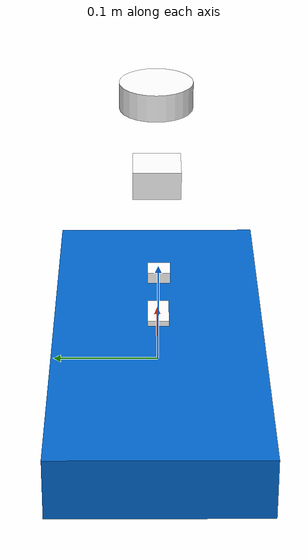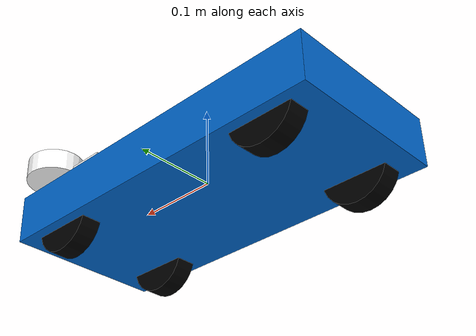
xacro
<?xml version = "1.0"?>
<robot name="shixi_car" xmlns:xacro="http://www.ros.org/wiki/xacro" xmlns:gz="http://playerstage.sourceforge.net/gazebo/xmlschema/#gz">
<!--运行时：
1.xacro car_sim.xacro > car_sim.urdf
2.gz sim car_sim.urdf
-->
    <material name = "blue">
     <color rgba = "0.0 0.4 0.8 1.0"/>
    </material>
    <material name = "black">
     <color rgba = "0.0 0.0 0.0 1.0"/>
    </material>
    <material name = "white">
     <color rgba="1.0 1.0 1.0 1.0"/>
    </material>
    <gazebo>
     <pose>0 -15 0.06 0 0 1.5708</pose>
    </gazebo>

    <link name = "base_link">
     <inertial>
      <origin xyz="0 0 0" rpy = "0 0 0"/>
      <!-- 默认0 0 0 朝东-->
      <mass value = "2"/>
      <inertia ixx="0.00727" ixy = "0" ixz = "0"
               iyy="0.03142" iyz = "0" izz = "0.03748"/>
     </inertial>
     <visual>
      <geometry>
       <box size = " 0.43 0.2 0.06"/>
      </geometry>
      <origin xyz="0 0 0" rpy = "0 0 0"/>
      <material name = "blue"/>
     </visual>
     <collision>
      <geometry>
       <box size = " 0.43 0.2 0.06"/>
      </geometry>
      <origin xyz="0 0 0" rpy = "0 0 0"/>
     </collision>
    </link>

    <xacro:macro name="wheel" params="place side x_offset y_offset z_offset is_front">

     <link name = "${place}_wheel_link">
      <inertial>
       <mass value = "0.15"/>
       <inertia ixx="0.00012" iyy="0.000068" izz="0.000068"
               ixy="0" ixz="0" iyz="0"/>
      </inertial>
      <visual>
       <geometry>
        <cylinder radius ="0.04" length="0.025"/>
       </geometry>
       <material name ="black"/>
       <origin rpy="1.5708 0 0"/>
      </visual>
      <collision>
       <geometry>
        <cylinder radius ="0.04" length="0.025"/>
       </geometry>
       <origin rpy="1.5708 0 0"/>
      </collision>
     </link>

     <joint name="${place}_wheel_joint" type="continuous">
      <parent link ="base_link"/>
      <child link = "${place}_wheel_link"/>
      <origin xyz = "${x_offset} ${y_offset} ${z_offset} " rpy="0 0 0" />
      <axis xyz = "0 1 0"/>
      <dynamics damping="0.05" friction="0.1"/>
      <xacro:if value="${is_front == 'true'}">

      </xacro:if>
     </joint>
    </xacro:macro>

<!--  实例化车轮 -->
    <xacro:wheel place="fl" side="left" x_offset="0.15" y_offset="0.075" z_offset="-0.02" is_front="true"/>
    <xacro:wheel place="fr" side="right" x_offset="0.15" y_offset="-0.075" z_offset="-0.02" is_front="true"/>
    <xacro:wheel place="rl" side="left" x_offset="-0.15" y_offset="0.075" z_offset="-0.02" is_front="false"/>
    <xacro:wheel place="rr" side="right" x_offset="-0.15" y_offset="-0.075" z_offset="-0.02" is_front="false"/>

    <link name="camera_link">
     <visual>
      <geometry>
        <box size = "0.05 0.05 0.03"/>
      </geometry>
      <material name="white"/>
     </visual>
     <inertial>
      <mass value = "0.01"/>
      <inertia ixx="1e-6" ixy="0" ixz="0" iyy="1e-6" iyz="0" izz="1e-6"/>
     </inertial>
    </link>
    <joint name="camera_joint" type="fixed">
     <parent link ="base_link"/>
     <child link = "camera_link"/>
     <origin xyz="0.2 0 0.1" rpy="0 0 0"/>
    </joint>

    <link name="lidar_link">
     <inertial>
      <mass value = "0.01"/>
      <inertia ixx="1e-6" ixy="0" ixz="0" iyy="1e-6" iyz="0" izz="1e-6"/>
     </inertial>
     <visual>
      <geometry>
        <cylinder radius="0.04" length="0.03"/>
      </geometry>
      <material name="white"/>
     </visual>
    </link>
    <joint name="lidar_joint" type="fixed">
     <parent link ="base_link"/>
     <child link = "lidar_link"/>
     <origin xyz="0.3 0 0.15" rpy="0 0 0"/>
    </joint>

    <link name="gps_link">
     <inertial>
      <mass value = "0.01"/>
      <inertia ixx="1e-6" ixy="0" ixz="0" iyy="1e-6" iyz="0" izz="1e-6"/>
     </inertial>
     <visual>
      <geometry>
        <box size = "0.04 0.02 0.005"/>
      </geometry>
      <material name="white"/>
     </visual>
    </link>

    <joint name="gps_joint" type="fixed">
     <parent link ="base_link"/>
     <child link = "gps_link"/>
     <origin xyz="0 0 0.05" rpy="0 0 0"/>
    </joint>

    <link name="imu_link">
     <inertial>
      <mass value = "0.01"/>
      <inertia ixx="1e-6" ixy="0" ixz="0" iyy="1e-6" iyz="0" izz="1e-6"/>
     </inertial>
     <visual>
      <geometry>
        <box size = "0.03 0.03 0.01"/>
      </geometry>
      <material name="white"/>
     </visual>
    </link>
    <joint name="imu_joint" type="fixed">
     <parent link ="base_link"/>
     <child link = "imu_link"/>
     <origin xyz="0.05 0 0.02" rpy="0 0 0"/>
    </joint>

    <link name="magnetometer_link">
     <inertial>
      <mass value = "0.01"/>
      <inertia ixx="1e-6" ixy="0" ixz="0" iyy="1e-6" iyz="0" izz="1e-6"/>
     </inertial>
     <visual>
      <geometry>
        <box size = "0.02 0.02 0.01"/>
      </geometry>
      <material name="white"/>
     </visual>
    </link>
    <joint name="magnetometer_joint" type="fixed">
     <parent link ="base_link"/>
     <child link = "magnetometer_link"/>
     <origin xyz="-0.05 0 0.12" rpy="0 0 0"/>
    </joint>

    <gazebo reference="camera_link">
     <sensor name="camera" type="camera">
      <always_on>true</always_on>
      <update_rate>30.0</update_rate>
      <pose>0 0 0 0 0 0</pose>
      <camera>
       <image>
        <width>640</width>
        <height>480</height>
        <format>R8G8B8</format>
       </image>
       <distortion>
        <model>plumb_bob</model>
        <k1>0.0</k1>
        <k2>0.0</k2>
        <k3>0.0</k3>
        <k4>0.0</k4>
        <k5>0.0</k5>
        <p1>0.0</p1>
        <p2>0.0</p2>
       </distortion>
      </camera>
     </sensor>
    </gazebo>

    <gazebo reference="lidar_link">
     <sensor name="lidar" type="gpu_lidar">
      <always_on>true</always_on>
      <update_rate>10.0</update_rate>
      <pose>0 0 0 0 0 0</pose>
      <lidar>
       <scan>
        <horizontal>
         <samples>360</samples>
         <resolution>1</resolution>
         <min_angle>-3.14159</min_angle>
         <max_angle>3.14159</max_angle>
        </horizontal>
        <vertical>
         <samples>1</samples>
         <resolution>0.1</resolution>
         <min_angle>-0.5235988</min_angle>
         <max_angle>0.5235988</max_angle>
        </vertical>
       </scan>
        <range>
         <min>0.1</min>
         <max>10.0</max>
         <resolution>0.01</resolution>
        </range>
      </lidar>
      </sensor>
    </gazebo>

    <gazebo reference="gps_link">
     <sensor name="gps" type="gps">
      <always_on>true</always_on>
      <update_rate>10.0</update_rate>
      <pose>0 0 0 0 0 0</pose>
     </sensor>
    </gazebo>

    <gazebo reference="imu_link">
     <sensor name="imu" type="imu">
      <always_on>true</always_on>
      <update_rate>10.0</update_rate>
      <pose>0 0 0 0 0 0</pose>
      <imu>
       <angular_velocity>
        <x>0.0</x>
        <y>0.0</y>
        <z>0.0</z>
       </angular_velocity>
       <linear_acceleration>
        <x>0.0</x>
        <y>0.0</y>
        <z>-9.8</z>
       </linear_acceleration>
      </imu>
     </sensor>
    </gazebo>

    <gazebo reference="magnetometer_link">
     <sensor name="magnetometer" type="magnetometer">
      <always_on>true</always_on>
      <update_rate>10.0</update_rate>
      <pose>0 0 0 0 0 0</pose>
     </sensor>
    </gazebo>

 <gazebo>
  <plugin filename="gz-sim-ackermann-steering-system" name="gz::sim::systems::AckermannSteering">
    <!-- 订阅的 cmd_vel 话题（Gazebo 内部） -->
    <topic>/cmd_vel</topic>

    <!-- 轴距（前后轮中心距离，单位：米） -->
    <wheel_base>0.3</wheel_base>
    <!-- 轮距（左右轮中心距离，单位：米） -->
    <wheel_track>0.15</wheel_track>
    <!-- 前轮最大转向角（弧度） -->
    <max_steering_angle>0.7</max_steering_angle>
    <!-- 车轮半径（单位：米） -->
    <wheel_radius>0.04</wheel_radius>
    <!-- 车轮宽度（可选） -->

    <!-- 驱动轮（通常为后轮） -->
    <rear_left_joint>rl_wheel_joint</rear_left_joint>
    <rear_right_joint>rr_wheel_joint</rear_right_joint>

    <!-- 转向轮（通常为前轮） -->
    <front_left_joint>fl_wheel_joint</front_left_joint>
    <front_right_joint>fr_wheel_joint</front_right_joint>

    <!-- 可选：转向轮（如果采用四轮转向） -->

    <!-- 里程计发布配置（可选） -->
    <odom_topic>/odometry</odom_topic>          <!-- Gazebo 内部话题名 -->
    <odom_frame>odom</odom_frame>               <!-- 里程计坐标系名称 -->
    <robot_base_frame>base_link</robot_base_frame>

    <!-- 更新频率（Hz） -->
    <update_rate>30.0</update_rate>

    <!-- 扭矩/加速度限制（可选） -->
    <max_wheel_torque>20.0</max_wheel_torque>
    <max_wheel_acceleration>1.0</max_wheel_acceleration>
  </plugin>
</gazebo>

</robot>
